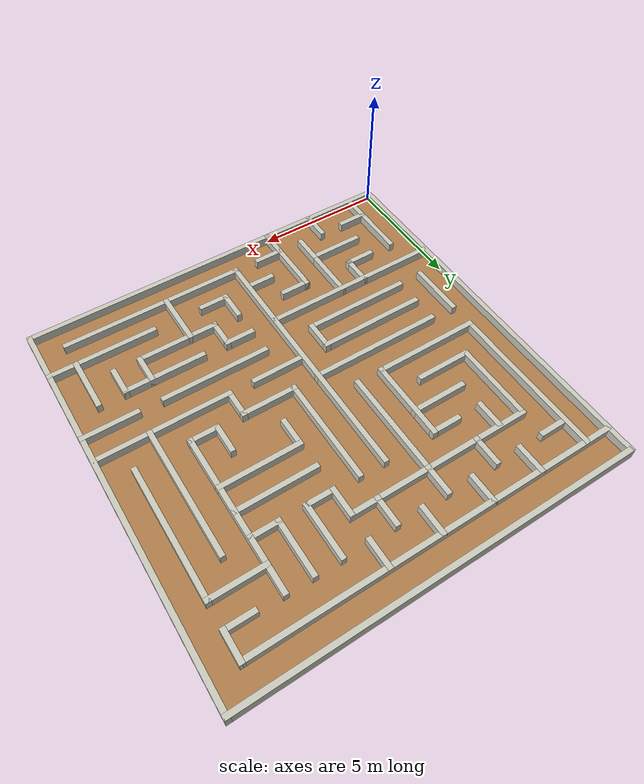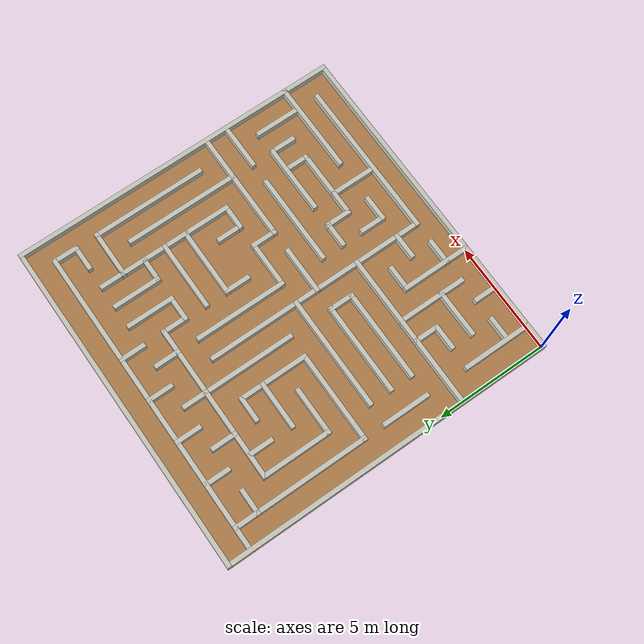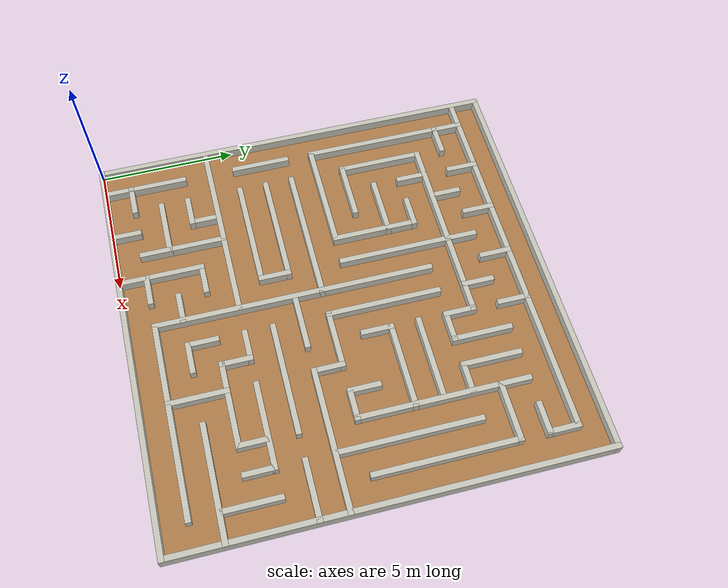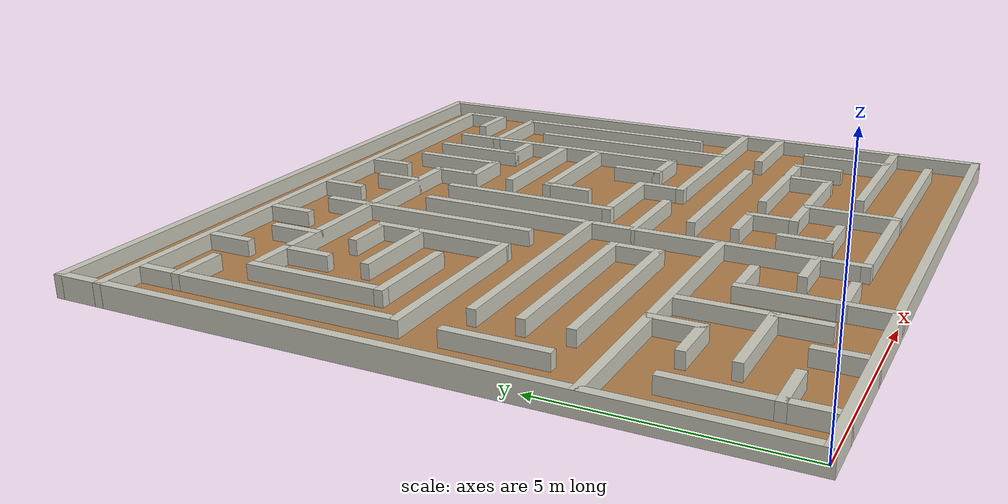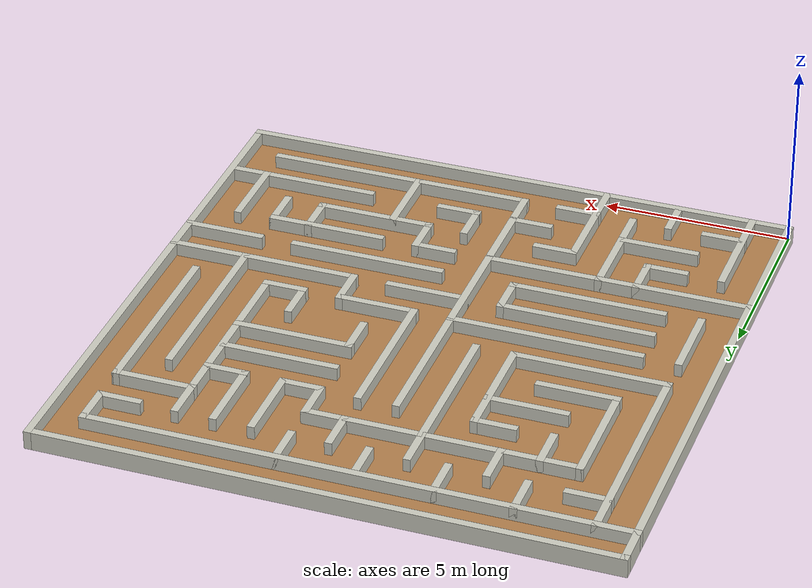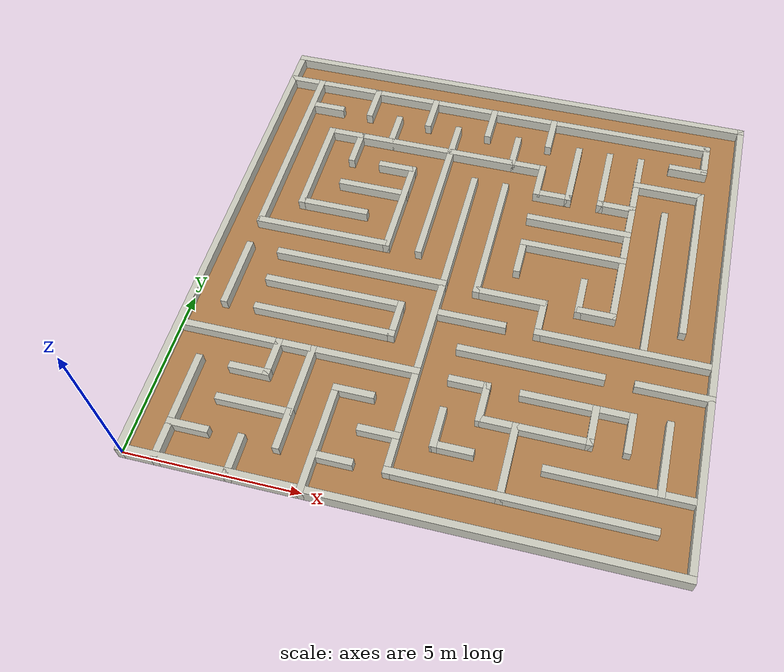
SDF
<?xml version='1.0'?>
<sdf version='1.4'>
    <world name="large_maze">
        <gui>
            <camera name="my_camera">
                <pose>7.5 7.5 30 0 1.57 1.57</pose>
            </camera>
        </gui>

        <scene>
            <shadows>0</shadows>
        </scene>

        <light type="directional" name="luz_Techo">
            <pose>7.5 7.5 9 0 0 0</pose>
            <diffuse>127 127 127 255</diffuse>
            <specular>25 25 25 255</specular>
            <attenuation>
                <range>20</range>
                <linear> 0.5</linear>
                <constant>0.8</constant>
                <quadratic>0.01</quadratic>
            </attenuation>
            <cast_shadows>false</cast_shadows>
        </light>

        <model name='large_maze'>
            <link name="ground">
                <collision name='ground'>
                    <geometry>
                        <box>
                            <size>15 15 0.001</size>
                        </box>
                    </geometry>
                    <pose>0 0 0 0 -0 0</pose>
                </collision>
                <visual name='ground'>
                    <pose>0 0 0 0 -0 0</pose>
                    <geometry>
                        <box>
                            <size>15 15 0.001</size>
                        </box>
                    </geometry>
                    <material>
                        <script>
                            <uri>file://media/materials/scripts/gazebo.material</uri>
                            <name>Gazebo/WoodFloor</name>
                        </script>
                    </material>
                </visual>
                <velocity_decay>
                    <linear>0</linear>
                    <angular>0</angular>
                </velocity_decay>
                <pose>7.5 7.5 0 0 -0 0</pose>
            </link>
            <link name='Wall_0'>
                <collision name='Wall_0_Collision'>
                    <geometry>
                        <box>
                            <size>15.2 0.2 0.5</size>
                        </box>
                    </geometry>
                    <pose>0 0 0.1 0 -0 0</pose>
                </collision>
                <visual name='Wall_0_Visual'>
                    <pose>0 0 0.1 0 -0 0</pose>
                    <geometry>
                        <box>
                            <size>15.2 0.2 0.5</size>
                        </box>
                    </geometry>
                    <material>
                        <script>
                            <uri>file://media/materials/scripts/gazebo.material</uri>
                            <name>Gazebo/PaintedWall</name>
                        </script>
                    </material>
                </visual>
                <velocity_decay>
                    <linear>0</linear>
                    <angular>0</angular>
                </velocity_decay>
                <pose>7.5 0 0 0 -0 0</pose>
            </link>
            <link name='Wall_1'>
                <collision name='Wall_1_Collision'>
                    <geometry>
                        <box>
                            <size>15.2 0.2 0.5</size>
                        </box>
                    </geometry>
                    <pose>0 0 0.1 0 -0 0</pose>
                </collision>
                <visual name='Wall_1_Visual'>
                    <pose>0 0 0.1 0 -0 0</pose>
                    <geometry>
                        <box>
                            <size>15.2 0.2 0.5</size>
                        </box>
                    </geometry>
                    <material>
                        <script>
                            <uri>file://media/materials/scripts/gazebo.material</uri>
                            <name>Gazebo/PaintedWall</name>
                        </script>
                    </material>
                </visual>
                <velocity_decay>
                    <linear>0</linear>
                    <angular>0</angular>
                </velocity_decay>
                <pose>15 7.5 0 0 -0 1.5708</pose>
            </link>
            <link name='Wall_101'>
                <collision name='Wall_101_Collision'>
                    <geometry>
                        <box>
                            <size>2.2 0.2 0.5</size>
                        </box>
                    </geometry>
                    <pose>0 0 0.1 0 -0 0</pose>
                </collision>
                <visual name='Wall_101_Visual'>
                    <pose>0 0 0.1 0 -0 0</pose>
                    <geometry>
                        <box>
                            <size>2.2 0.2 0.5</size>
                        </box>
                    </geometry>
                    <material>
                        <script>
                            <uri>file://media/materials/scripts/gazebo.material</uri>
                            <name>Gazebo/PaintedWall</name>
                        </script>
                    </material>
                </visual>
                <velocity_decay>
                    <linear>0</linear>
                    <angular>0</angular>
                </velocity_decay>
                <pose>8 6 0 0 -0 0</pose>
            </link>
            <link name='Wall_103'>
                <collision name='Wall_103_Collision'>
                    <geometry>
                        <box>
                            <size>5.2 0.2 0.5</size>
                        </box>
                    </geometry>
                    <pose>0 0 0.1 0 -0 0</pose>
                </collision>
                <visual name='Wall_103_Visual'>
                    <pose>0 0 0.1 0 -0 0</pose>
                    <geometry>
                        <box>
                            <size>5.2 0.2 0.5</size>
                        </box>
                    </geometry>
                    <material>
                        <script>
                            <uri>file://media/materials/scripts/gazebo.material</uri>
                            <name>Gazebo/PaintedWall</name>
                        </script>
                    </material>
                </visual>
                <velocity_decay>
                    <linear>0</linear>
                    <angular>0</angular>
                </velocity_decay>
                <pose>12.5 6 0 0 -0 3.14159</pose>
            </link>
            <link name='Wall_104'>
                <collision name='Wall_104_Collision'>
                    <geometry>
                        <box>
                            <size>1.2 0.2 0.5</size>
                        </box>
                    </geometry>
                    <pose>0 0 0.1 0 -0 0</pose>
                </collision>
                <visual name='Wall_104_Visual'>
                    <pose>0 0 0.1 0 -0 0</pose>
                    <geometry>
                        <box>
                            <size>1.2 0.2 0.5</size>
                        </box>
                    </geometry>
                    <material>
                        <script>
                            <uri>file://media/materials/scripts/gazebo.material</uri>
                            <name>Gazebo/PaintedWall</name>
                        </script>
                    </material>
                </visual>
                <velocity_decay>
                    <linear>0</linear>
                    <angular>0</angular>
                </velocity_decay>
                <pose>10 6.5 0 0 -0 1.5708</pose>
            </link>
            <link name='Wall_105'>
                <collision name='Wall_105_Collision'>
                    <geometry>
                        <box>
                            <size>2.2 0.2 0.5</size>
                        </box>
                    </geometry>
                    <pose>0 0 0.1 0 -0 0</pose>
                </collision>
                <visual name='Wall_105_Visual'>
                    <pose>0 0 0.1 0 -0 0</pose>
                    <geometry>
                        <box>
                            <size>2.2 0.2 0.5</size>
                        </box>
                    </geometry>
                    <material>
                        <script>
                            <uri>file://media/materials/scripts/gazebo.material</uri>
                            <name>Gazebo/PaintedWall</name>
                        </script>
                    </material>
                </visual>
                <velocity_decay>
                    <linear>0</linear>
                    <angular>0</angular>
                </velocity_decay>
                <pose>9 7 0 0 -0 3.14159</pose>
            </link>
            <link name='Wall_106'>
                <collision name='Wall_106_Collision'>
                    <geometry>
                        <box>
                            <size>4.2 0.2 0.5</size>
                        </box>
                    </geometry>
                    <pose>0 0 0.1 0 -0 0</pose>
                </collision>
                <visual name='Wall_106_Visual'>
                    <pose>0 0 0.1 0 -0 0</pose>
                    <geometry>
                        <box>
                            <size>4.2 0.2 0.5</size>
                        </box>
                    </geometry>
                    <material>
                        <script>
                            <uri>file://media/materials/scripts/gazebo.material</uri>
                            <name>Gazebo/PaintedWall</name>
                        </script>
                    </material>
                </visual>
                <velocity_decay>
                    <linear>0</linear>
                    <angular>0</angular>
                </velocity_decay>
                <pose>8 9 0 0 -0 1.5708</pose>
            </link>
            <link name='Wall_108'>
                <collision name='Wall_108_Collision'>
                    <geometry>
                        <box>
                            <size>5.2 0.2 0.5</size>
                        </box>
                    </geometry>
                    <pose>0 0 0.1 0 -0 0</pose>
                </collision>
                <visual name='Wall_108_Visual'>
                    <pose>0 0 0.1 0 -0 0</pose>
                    <geometry>
                        <box>
                            <size>5.2 0.2 0.5</size>
                        </box>
                    </geometry>
                    <material>
                        <script>
                            <uri>file://media/materials/scripts/gazebo.material</uri>
                            <name>Gazebo/PaintedWall</name>
                        </script>
                    </material>
                </visual>
                <velocity_decay>
                    <linear>0</linear>
                    <angular>0</angular>
                </velocity_decay>
                <pose>13 8.5 0 0 0 -1.5708</pose>
            </link>
            <link name='Wall_11'>
                <collision name='Wall_11_Collision'>
                    <geometry>
                        <box>
                            <size>7.2 0.2 0.5</size>
                        </box>
                    </geometry>
                    <pose>0 0 0.1 0 -0 0</pose>
                </collision>
                <visual name='Wall_11_Visual'>
                    <pose>0 0 0.1 0 -0 0</pose>
                    <geometry>
                        <box>
                            <size>7.2 0.2 0.5</size>
                        </box>
                    </geometry>
                    <material>
                        <script>
                            <uri>file://media/materials/scripts/gazebo.material</uri>
                            <name>Gazebo/PaintedWall</name>
                        </script>
                    </material>
                </visual>
                <velocity_decay>
                    <linear>0</linear>
                    <angular>0</angular>
                </velocity_decay>
                <pose>3.5 4 0 0 -0 0</pose>
            </link>
            <link name='Wall_110'>
                <collision name='Wall_110_Collision'>
                    <geometry>
                        <box>
                            <size>5.2 0.2 0.5</size>
                        </box>
                    </geometry>
                    <pose>0 0 0.1 0 -0 0</pose>
                </collision>
                <visual name='Wall_110_Visual'>
                    <pose>0 0 0.1 0 -0 0</pose>
                    <geometry>
                        <box>
                            <size>5.2 0.2 0.5</size>
                        </box>
                    </geometry>
                    <material>
                        <script>
                            <uri>file://media/materials/scripts/gazebo.material</uri>
                            <name>Gazebo/PaintedWall</name>
                        </script>
                    </material>
                </visual>
                <velocity_decay>
                    <linear>0</linear>
                    <angular>0</angular>
                </velocity_decay>
                <pose>14 9.5 0 0 -0 1.5708</pose>
            </link>
            <link name='Wall_111'>
                <collision name='Wall_111_Collision'>
                    <geometry>
                        <box>
                            <size>2.2 0.2 0.5</size>
                        </box>
                    </geometry>
                    <pose>0 0 0.1 0 -0 0</pose>
                </collision>
                <visual name='Wall_111_Visual'>
                    <pose>0 0 0.1 0 -0 0</pose>
                    <geometry>
                        <box>
                            <size>2.2 0.2 0.5</size>
                        </box>
                    </geometry>
                    <material>
                        <script>
                            <uri>file://media/materials/scripts/gazebo.material</uri>
                            <name>Gazebo/PaintedWall</name>
                        </script>
                    </material>
                </visual>
                <velocity_decay>
                    <linear>0</linear>
                    <angular>0</angular>
                </velocity_decay>
                <pose>13 12 0 0 -0 3.14159</pose>
            </link>
            <link name='Wall_113'>
                <collision name='Wall_113_Collision'>
                    <geometry>
                        <box>
                            <size>6.2 0.2 0.5</size>
                        </box>
                    </geometry>
                    <pose>0 0 0.1 0 -0 0</pose>
                </collision>
                <visual name='Wall_113_Visual'>
                    <pose>0 0 0.1 0 -0 0</pose>
                    <geometry>
                        <box>
                            <size>6.2 0.2 0.5</size>
                        </box>
                    </geometry>
                    <material>
                        <script>
                            <uri>file://media/materials/scripts/gazebo.material</uri>
                            <name>Gazebo/PaintedWall</name>
                        </script>
                    </material>
                </visual>
                <velocity_decay>
                    <linear>0</linear>
                    <angular>0</angular>
                </velocity_decay>
                <pose>12 10 0 0 0 -1.5708</pose>
            </link>
            <link name='Wall_114'>
                <collision name='Wall_114_Collision'>
                    <geometry>
                        <box>
                            <size>1.2 0.2 0.5</size>
                        </box>
                    </geometry>
                    <pose>0 0 0.1 0 -0 0</pose>
                </collision>
                <visual name='Wall_114_Visual'>
                    <pose>0 0 0.1 0 -0 0</pose>
                    <geometry>
                        <box>
                            <size>1.2 0.2 0.5</size>
                        </box>
                    </geometry>
                    <material>
                        <script>
                            <uri>file://media/materials/scripts/gazebo.material</uri>
                            <name>Gazebo/PaintedWall</name>
                        </script>
                    </material>
                </visual>
                <velocity_decay>
                    <linear>0</linear>
                    <angular>0</angular>
                </velocity_decay>
                <pose>11.5 7 0 0 -0 3.14159</pose>
            </link>
            <link name='Wall_115'>
                <collision name='Wall_115_Collision'>
                    <geometry>
                        <box>
                            <size>1.2 0.2 0.5</size>
                        </box>
                    </geometry>
                    <pose>0 0 0.1 0 -0 0</pose>
                </collision>
                <visual name='Wall_115_Visual'>
                    <pose>0 0 0.1 0 -0 0</pose>
                    <geometry>
                        <box>
                            <size>1.2 0.2 0.5</size>
                        </box>
                    </geometry>
                    <material>
                        <script>
                            <uri>file://media/materials/scripts/gazebo.material</uri>
                            <name>Gazebo/PaintedWall</name>
                        </script>
                    </material>
                </visual>
                <velocity_decay>
                    <linear>0</linear>
                    <angular>0</angular>
                </velocity_decay>
                <pose>11 7.5 0 0 -0 1.5708</pose>
            </link>
            <link name='Wall_117'>
                <collision name='Wall_117_Collision'>
                    <geometry>
                        <box>
                            <size>3.2 0.2 0.5</size>
                        </box>
                    </geometry>
                    <pose>0 0 0.1 0 -0 0</pose>
                </collision>
                <visual name='Wall_117_Visual'>
                    <pose>0 0 0.1 0 -0 0</pose>
                    <geometry>
                        <box>
                            <size>3.2 0.2 0.5</size>
                        </box>
                    </geometry>
                    <material>
                        <script>
                            <uri>file://media/materials/scripts/gazebo.material</uri>
                            <name>Gazebo/PaintedWall</name>
                        </script>
                    </material>
                </visual>
                <velocity_decay>
                    <linear>0</linear>
                    <angular>0</angular>
                </velocity_decay>
                <pose>10.5 9 0 0 -0 3.14159</pose>
            </link>
            <link name='Wall_118'>
                <collision name='Wall_118_Collision'>
                    <geometry>
                        <box>
                            <size>1.2 0.2 0.5</size>
                        </box>
                    </geometry>
                    <pose>0 0 0.1 0 -0 0</pose>
                </collision>
                <visual name='Wall_118_Visual'>
                    <pose>0 0 0.1 0 -0 0</pose>
                    <geometry>
                        <box>
                            <size>1.2 0.2 0.5</size>
                        </box>
                    </geometry>
                    <material>
                        <script>
                            <uri>file://media/materials/scripts/gazebo.material</uri>
                            <name>Gazebo/PaintedWall</name>
                        </script>
                    </material>
                </visual>
                <velocity_decay>
                    <linear>0</linear>
                    <angular>0</angular>
                </velocity_decay>
                <pose>9 8.5 0 0 0 -1.5708</pose>
            </link>
            <link name='Wall_120'>
                <collision name='Wall_120_Collision'>
                    <geometry>
                        <box>
                            <size>3.2 0.2 0.5</size>
                        </box>
                    </geometry>
                    <pose>0 0 0.1 0 -0 0</pose>
                </collision>
                <visual name='Wall_120_Visual'>
                    <pose>0 0 0.1 0 -0 0</pose>
                    <geometry>
                        <box>
                            <size>3.2 0.2 0.5</size>
                        </box>
                    </geometry>
                    <material>
                        <script>
                            <uri>file://media/materials/scripts/gazebo.material</uri>
                            <name>Gazebo/PaintedWall</name>
                        </script>
                    </material>
                </visual>
                <velocity_decay>
                    <linear>0</linear>
                    <angular>0</angular>
                </velocity_decay>
                <pose>10.5 10 0 0 -0 3.14159</pose>
            </link>
            <link name='Wall_122'>
                <collision name='Wall_122_Collision'>
                    <geometry>
                        <box>
                            <size>2.2 0.2 0.5</size>
                        </box>
                    </geometry>
                    <pose>0 0 0.1 0 -0 0</pose>
                </collision>
                <visual name='Wall_122_Visual'>
                    <pose>0 0 0.1 0 -0 0</pose>
                    <geometry>
                        <box>
                            <size>2.2 0.2 0.5</size>
                        </box>
                    </geometry>
                    <material>
                        <script>
                            <uri>file://media/materials/scripts/gazebo.material</uri>
                            <name>Gazebo/PaintedWall</name>
                        </script>
                    </material>
                </visual>
                <velocity_decay>
                    <linear>0</linear>
                    <angular>0</angular>
                </velocity_decay>
                <pose>11 12 0 0 0 -1.5708</pose>
            </link>
            <link name='Wall_123'>
                <collision name='Wall_123_Collision'>
                    <geometry>
                        <box>
                            <size>1.2 0.2 0.5</size>
                        </box>
                    </geometry>
                    <pose>0 0 0.1 0 -0 0</pose>
                </collision>
                <visual name='Wall_123_Visual'>
                    <pose>0 0 0.1 0 -0 0</pose>
                    <geometry>
                        <box>
                            <size>1.2 0.2 0.5</size>
                        </box>
                    </geometry>
                    <material>
                        <script>
                            <uri>file://media/materials/scripts/gazebo.material</uri>
                            <name>Gazebo/PaintedWall</name>
                        </script>
                    </material>
                </visual>
                <velocity_decay>
                    <linear>0</linear>
                    <angular>0</angular>
                </velocity_decay>
                <pose>11.5 11 0 0 -0 0</pose>
            </link>
            <link name='Wall_13'>
                <collision name='Wall_13_Collision'>
                    <geometry>
                        <box>
                            <size>1.2 0.2 0.5</size>
                        </box>
                    </geometry>
                    <pose>0 0 0.1 0 -0 0</pose>
                </collision>
                <visual name='Wall_13_Visual'>
                    <pose>0 0 0.1 0 -0 0</pose>
                    <geometry>
                        <box>
                            <size>1.2 0.2 0.5</size>
                        </box>
                    </geometry>
                    <material>
                        <script>
                            <uri>file://media/materials/scripts/gazebo.material</uri>
                            <name>Gazebo/PaintedWall</name>
                        </script>
                    </material>
                </visual>
                <velocity_decay>
                    <linear>0</linear>
                    <angular>0</angular>
                </velocity_decay>
                <pose>3 3.5 0 0 0 -1.5708</pose>
            </link>
            <link name='Wall_14'>
                <collision name='Wall_14_Collision'>
                    <geometry>
                        <box>
                            <size>1.2 0.2 0.5</size>
                        </box>
                    </geometry>
                    <pose>0 0 0.1 0 -0 0</pose>
                </collision>
                <visual name='Wall_14_Visual'>
                    <pose>0 0 0.1 0 -0 0</pose>
                    <geometry>
                        <box>
                            <size>1.2 0.2 0.5</size>
                        </box>
                    </geometry>
                    <material>
                        <script>
                            <uri>file://media/materials/scripts/gazebo.material</uri>
                            <name>Gazebo/PaintedWall</name>
                        </script>
                    </material>
                </visual>
                <velocity_decay>
                    <linear>0</linear>
                    <angular>0</angular>
                </velocity_decay>
                <pose>2.5 3 0 0 -0 3.14159</pose>
            </link>
            <link name='Wall_16'>
                <collision name='Wall_16_Collision'>
                    <geometry>
                        <box>
                            <size>2.2 0.2 0.5</size>
                        </box>
                    </geometry>
                    <pose>0 0 0.1 0 -0 0</pose>
                </collision>
                <visual name='Wall_16_Visual'>
                    <pose>0 0 0.1 0 -0 0</pose>
                    <geometry>
                        <box>
                            <size>2.2 0.2 0.5</size>
                        </box>
                    </geometry>
                    <material>
                        <script>
                            <uri>file://media/materials/scripts/gazebo.material</uri>
                            <name>Gazebo/PaintedWall</name>
                        </script>
                    </material>
                </visual>
                <velocity_decay>
                    <linear>0</linear>
                    <angular>0</angular>
                </velocity_decay>
                <pose>4 3 0 0 0 -1.5708</pose>
            </link>
            <link name='Wall_17'>
                <collision name='Wall_17_Collision'>
                    <geometry>
                        <box>
                            <size>2.2 0.2 0.5</size>
                        </box>
                    </geometry>
                    <pose>0 0 0.1 0 -0 0</pose>
                </collision>
                <visual name='Wall_17_Visual'>
                    <pose>0 0 0.1 0 -0 0</pose>
                    <geometry>
                        <box>
                            <size>2.2 0.2 0.5</size>
                        </box>
                    </geometry>
                    <material>
                        <script>
                            <uri>file://media/materials/scripts/gazebo.material</uri>
                            <name>Gazebo/PaintedWall</name>
                        </script>
                    </material>
                </visual>
                <velocity_decay>
                    <linear>0</linear>
                    <angular>0</angular>
                </velocity_decay>
                <pose>3 2 0 0 -0 3.14159</pose>
            </link>
            <link name='Wall_19'>
                <collision name='Wall_19_Collision'>
                    <geometry>
                        <box>
                            <size>1.2 0.2 0.5</size>
                        </box>
                    </geometry>
                    <pose>0 0 0.1 0 -0 0</pose>
                </collision>
                <visual name='Wall_19_Visual'>
                    <pose>0 0 0.1 0 -0 0</pose>
                    <geometry>
                        <box>
                            <size>1.2 0.2 0.5</size>
                        </box>
                    </geometry>
                    <material>
                        <script>
                            <uri>file://media/materials/scripts/gazebo.material</uri>
                            <name>Gazebo/PaintedWall</name>
                        </script>
                    </material>
                </visual>
                <velocity_decay>
                    <linear>0</linear>
                    <angular>0</angular>
                </velocity_decay>
                <pose>4 1.5 0 0 0 -1.5708</pose>
            </link>
            <link name='Wall_2'>
                <collision name='Wall_2_Collision'>
                    <geometry>
                        <box>
                            <size>15.2 0.2 0.5</size>
                        </box>
                    </geometry>
                    <pose>0 0 0.1 0 -0 0</pose>
                </collision>
                <visual name='Wall_2_Visual'>
                    <pose>0 0 0.1 0 -0 0</pose>
                    <geometry>
                        <box>
                            <size>15.2 0.2 0.5</size>
                        </box>
                    </geometry>
                    <material>
                        <script>
                            <uri>file://media/materials/scripts/gazebo.material</uri>
                            <name>Gazebo/PaintedWall</name>
                        </script>
                    </material>
                </visual>
                <velocity_decay>
                    <linear>0</linear>
                    <angular>0</angular>
                </velocity_decay>
                <pose>7.5 15 0 0 -0 3.14159</pose>
            </link>
            <link name='Wall_21'>
                <collision name='Wall_21_Collision'>
                    <geometry>
                        <box>
                            <size>3.2 0.2 0.5</size>
                        </box>
                    </geometry>
                    <pose>0 0 0.1 0 -0 0</pose>
                </collision>
                <visual name='Wall_21_Visual'>
                    <pose>0 0 0.1 0 -0 0</pose>
                    <geometry>
                        <box>
                            <size>3.2 0.2 0.5</size>
                        </box>
                    </geometry>
                    <material>
                        <script>
                            <uri>file://media/materials/scripts/gazebo.material</uri>
                            <name>Gazebo/PaintedWall</name>
                        </script>
                    </material>
                </visual>
                <velocity_decay>
                    <linear>0</linear>
                    <angular>0</angular>
                </velocity_decay>
                <pose>5 1.5 0 0 -0 1.5708</pose>
            </link>
            <link name='Wall_22'>
                <collision name='Wall_22_Collision'>
                    <geometry>
                        <box>
                            <size>1.2 0.2 0.5</size>
                        </box>
                    </geometry>
                    <pose>0 0 0.1 0 -0 0</pose>
                </collision>
                <visual name='Wall_22_Visual'>
                    <pose>0 0 0.1 0 -0 0</pose>
                    <geometry>
                        <box>
                            <size>1.2 0.2 0.5</size>
                        </box>
                    </geometry>
                    <material>
                        <script>
                            <uri>file://media/materials/scripts/gazebo.material</uri>
                            <name>Gazebo/PaintedWall</name>
                        </script>
                    </material>
                </visual>
                <velocity_decay>
                    <linear>0</linear>
                    <angular>0</angular>
                </velocity_decay>
                <pose>5.5 3 0 0 -0 0</pose>
            </link>
            <link name='Wall_24'>
                <collision name='Wall_24_Collision'>
                    <geometry>
                        <box>
                            <size>1.2 0.2 0.5</size>
                        </box>
                    </geometry>
                    <pose>0 0 0.1 0 -0 0</pose>
                </collision>
                <visual name='Wall_24_Visual'>
                    <pose>0 0 0.1 0 -0 0</pose>
                    <geometry>
                        <box>
                            <size>1.2 0.2 0.5</size>
                        </box>
                    </geometry>
                    <material>
                        <script>
                            <uri>file://media/materials/scripts/gazebo.material</uri>
                            <name>Gazebo/PaintedWall</name>
                        </script>
                    </material>
                </visual>
                <velocity_decay>
                    <linear>0</linear>
                    <angular>0</angular>
                </velocity_decay>
                <pose>5.5 1 0 0 -0 0</pose>
            </link>
            <link name='Wall_26'>
                <collision name='Wall_26_Collision'>
                    <geometry>
                        <box>
                            <size>7.2 0.2 0.5</size>
                        </box>
                    </geometry>
                    <pose>0 0 0.1 0 -0 0</pose>
                </collision>
                <visual name='Wall_26_Visual'>
                    <pose>0 0 0.1 0 -0 0</pose>
                    <geometry>
                        <box>
                            <size>7.2 0.2 0.5</size>
                        </box>
                    </geometry>
                    <material>
                        <script>
                            <uri>file://media/materials/scripts/gazebo.material</uri>
                            <name>Gazebo/PaintedWall</name>
                        </script>
                    </material>
                </visual>
                <velocity_decay>
                    <linear>0</linear>
                    <angular>0</angular>
                </velocity_decay>
                <pose>10.5 1 0 0 -0 3.14159</pose>
            </link>
            <link name='Wall_27'>
                <collision name='Wall_27_Collision'>
                    <geometry>
                        <box>
                            <size>10.2 0.2 0.5</size>
                        </box>
                    </geometry>
                    <pose>0 0 0.1 0 -0 0</pose>
                </collision>
                <visual name='Wall_27_Visual'>
                    <pose>0 0 0.1 0 -0 0</pose>
                    <geometry>
                        <box>
                            <size>10.2 0.2 0.5</size>
                        </box>
                    </geometry>
                    <material>
                        <script>
                            <uri>file://media/materials/scripts/gazebo.material</uri>
                            <name>Gazebo/PaintedWall</name>
                        </script>
                    </material>
                </visual>
                <velocity_decay>
                    <linear>0</linear>
                    <angular>0</angular>
                </velocity_decay>
                <pose>7 6 0 0 -0 1.5708</pose>
            </link>
            <link name='Wall_29'>
                <collision name='Wall_29_Collision'>
                    <geometry>
                        <box>
                            <size>1.2 0.2 0.5</size>
                        </box>
                    </geometry>
                    <pose>0 0 0.1 0 -0 0</pose>
                </collision>
                <visual name='Wall_29_Visual'>
                    <pose>0 0 0.1 0 -0 0</pose>
                    <geometry>
                        <box>
                            <size>1.2 0.2 0.5</size>
                        </box>
                    </geometry>
                    <material>
                        <script>
                            <uri>file://media/materials/scripts/gazebo.material</uri>
                            <name>Gazebo/PaintedWall</name>
                        </script>
                    </material>
                </visual>
                <velocity_decay>
                    <linear>0</linear>
                    <angular>0</angular>
                </velocity_decay>
                <pose>6.5 2 0 0 -0 0</pose>
            </link>
            <link name='Wall_3'>
                <collision name='Wall_3_Collision'>
                    <geometry>
                        <box>
                            <size>15.2 0.2 0.5</size>
                        </box>
                    </geometry>
                    <pose>0 0 0.1 0 -0 0</pose>
                </collision>
                <visual name='Wall_3_Visual'>
                    <pose>0 0 0.1 0 -0 0</pose>
                    <geometry>
                        <box>
                            <size>15.2 0.2 0.5</size>
                        </box>
                    </geometry>
                    <material>
                        <script>
                            <uri>file://media/materials/scripts/gazebo.material</uri>
                            <name>Gazebo/PaintedWall</name>
                        </script>
                    </material>
                </visual>
                <velocity_decay>
                    <linear>0</linear>
                    <angular>0</angular>
                </velocity_decay>
                <pose>0 7.5 0 0 0 -1.5708</pose>
            </link>
            <link name='Wall_31'>
                <collision name='Wall_31_Collision'>
                    <geometry>
                        <box>
                            <size>1.2 0.2 0.5</size>
                        </box>
                    </geometry>
                    <pose>0 0 0.1 0 -0 0</pose>
                </collision>
                <visual name='Wall_31_Visual'>
                    <pose>0 0 0.1 0 -0 0</pose>
                    <geometry>
                        <box>
                            <size>1.2 0.2 0.5</size>
                        </box>
                    </geometry>
                    <material>
                        <script>
                            <uri>file://media/materials/scripts/gazebo.material</uri>
                            <name>Gazebo/PaintedWall</name>
                        </script>
                    </material>
                </visual>
                <velocity_decay>
                    <linear>0</linear>
                    <angular>0</angular>
                </velocity_decay>
                <pose>8 2.5 0 0 0 -1.5708</pose>
            </link>
            <link name='Wall_32'>
                <collision name='Wall_32_Collision'>
                    <geometry>
                        <box>
                            <size>1.2 0.2 0.5</size>
                        </box>
                    </geometry>
                    <pose>0 0 0.1 0 -0 0</pose>
                </collision>
                <visual name='Wall_32_Visual'>
                    <pose>0 0 0.1 0 -0 0</pose>
                    <geometry>
                        <box>
                            <size>1.2 0.2 0.5</size>
                        </box>
                    </geometry>
                    <material>
                        <script>
                            <uri>file://media/materials/scripts/gazebo.material</uri>
                            <name>Gazebo/PaintedWall</name>
                        </script>
                    </material>
                </visual>
                <velocity_decay>
                    <linear>0</linear>
                    <angular>0</angular>
                </velocity_decay>
                <pose>8.5 2 0 0 -0 0</pose>
            </link>
            <link name='Wall_34'>
                <collision name='Wall_34_Collision'>
                    <geometry>
                        <box>
                            <size>4.2 0.2 0.5</size>
                        </box>
                    </geometry>
                    <pose>0 0 0.1 0 -0 0</pose>
                </collision>
                <visual name='Wall_34_Visual'>
                    <pose>0 0 0.1 0 -0 0</pose>
                    <geometry>
                        <box>
                            <size>4.2 0.2 0.5</size>
                        </box>
                    </geometry>
                    <material>
                        <script>
                            <uri>file://media/materials/scripts/gazebo.material</uri>
                            <name>Gazebo/PaintedWall</name>
                        </script>
                    </material>
                </visual>
                <velocity_decay>
                    <linear>0</linear>
                    <angular>0</angular>
                </velocity_decay>
                <pose>13 2 0 0 -0 3.14159</pose>
            </link>
            <link name='Wall_36'>
                <collision name='Wall_36_Collision'>
                    <geometry>
                        <box>
                            <size>2.2 0.2 0.5</size>
                        </box>
                    </geometry>
                    <pose>0 0 0.1 0 -0 0</pose>
                </collision>
                <visual name='Wall_36_Visual'>
                    <pose>0 0 0.1 0 -0 0</pose>
                    <geometry>
                        <box>
                            <size>2.2 0.2 0.5</size>
                        </box>
                    </geometry>
                    <material>
                        <script>
                            <uri>file://media/materials/scripts/gazebo.material</uri>
                            <name>Gazebo/PaintedWall</name>
                        </script>
                    </material>
                </visual>
                <velocity_decay>
                    <linear>0</linear>
                    <angular>0</angular>
                </velocity_decay>
                <pose>10 2 0 0 -0 1.5708</pose>
            </link>
            <link name='Wall_38'>
                <collision name='Wall_38_Collision'>
                    <geometry>
                        <box>
                            <size>2.2 0.2 0.5</size>
                        </box>
                    </geometry>
                    <pose>0 0 0.1 0 -0 0</pose>
                </collision>
                <visual name='Wall_38_Visual'>
                    <pose>0 0 0.1 0 -0 0</pose>
                    <geometry>
                        <box>
                            <size>2.2 0.2 0.5</size>
                        </box>
                    </geometry>
                    <material>
                        <script>
                            <uri>file://media/materials/scripts/gazebo.material</uri>
                            <name>Gazebo/PaintedWall</name>
                        </script>
                    </material>
                </visual>
                <velocity_decay>
                    <linear>0</linear>
                    <angular>0</angular>
                </velocity_decay>
                <pose>14 3 0 0 -0 1.5708</pose>
            </link>
            <link name='Wall_40'>
                <collision name='Wall_40_Collision'>
                    <geometry>
                        <box>
                            <size>3.2 0.2 0.5</size>
                        </box>
                    </geometry>
                    <pose>0 0 0.1 0 -0 0</pose>
                </collision>
                <visual name='Wall_40_Visual'>
                    <pose>0 0 0.1 0 -0 0</pose>
                    <geometry>
                        <box>
                            <size>3.2 0.2 0.5</size>
                        </box>
                    </geometry>
                    <material>
                        <script>
                            <uri>file://media/materials/scripts/gazebo.material</uri>
                            <name>Gazebo/PaintedWall</name>
                        </script>
                    </material>
                </visual>
                <velocity_decay>
                    <linear>0</linear>
                    <angular>0</angular>
                </velocity_decay>
                <pose>10.5 3 0 0 -0 0</pose>
            </link>
            <link name='Wall_42'>
                <collision name='Wall_42_Collision'>
                    <geometry>
                        <box>
                            <size>1.2 0.2 0.5</size>
                        </box>
                    </geometry>
                    <pose>0 0 0.1 0 -0 0</pose>
                </collision>
                <visual name='Wall_42_Visual'>
                    <pose>0 0 0.1 0 -0 0</pose>
                    <geometry>
                        <box>
                            <size>1.2 0.2 0.5</size>
                        </box>
                    </geometry>
                    <material>
                        <script>
                            <uri>file://media/materials/scripts/gazebo.material</uri>
                            <name>Gazebo/PaintedWall</name>
                        </script>
                    </material>
                </visual>
                <velocity_decay>
                    <linear>0</linear>
                    <angular>0</angular>
                </velocity_decay>
                <pose>9 3.5 0 0 -0 1.5708</pose>
            </link>
            <link name='Wall_43'>
                <collision name='Wall_43_Collision'>
                    <geometry>
                        <box>
                            <size>1.2 0.2 0.5</size>
                        </box>
                    </geometry>
                    <pose>0 0 0.1 0 -0 0</pose>
                </collision>
                <visual name='Wall_43_Visual'>
                    <pose>0 0 0.1 0 -0 0</pose>
                    <geometry>
                        <box>
                            <size>1.2 0.2 0.5</size>
                        </box>
                    </geometry>
                    <material>
                        <script>
                            <uri>file://media/materials/scripts/gazebo.material</uri>
                            <name>Gazebo/PaintedWall</name>
                        </script>
                    </material>
                </visual>
                <velocity_decay>
                    <linear>0</linear>
                    <angular>0</angular>
                </velocity_decay>
                <pose>8.5 4 0 0 -0 3.14159</pose>
            </link>
            <link name='Wall_46'>
                <collision name='Wall_46_Collision'>
                    <geometry>
                        <box>
                            <size>1.2 0.2 0.5</size>
                        </box>
                    </geometry>
                    <pose>0 0 0.1 0 -0 0</pose>
                </collision>
                <visual name='Wall_46_Visual'>
                    <pose>0 0 0.1 0 -0 0</pose>
                    <geometry>
                        <box>
                            <size>1.2 0.2 0.5</size>
                        </box>
                    </geometry>
                    <material>
                        <script>
                            <uri>file://media/materials/scripts/gazebo.material</uri>
                            <name>Gazebo/PaintedWall</name>
                        </script>
                    </material>
                </visual>
                <velocity_decay>
                    <linear>0</linear>
                    <angular>0</angular>
                </velocity_decay>
                <pose>12 3.5 0 0 -0 1.5708</pose>
            </link>
            <link name='Wall_48'>
                <collision name='Wall_48_Collision'>
                    <geometry>
                        <box>
                            <size>3.2 0.2 0.5</size>
                        </box>
                    </geometry>
                    <pose>0 0 0.1 0 -0 0</pose>
                </collision>
                <visual name='Wall_48_Visual'>
                    <pose>0 0 0.1 0 -0 0</pose>
                    <geometry>
                        <box>
                            <size>3.2 0.2 0.5</size>
                        </box>
                    </geometry>
                    <material>
                        <script>
                            <uri>file://media/materials/scripts/gazebo.material</uri>
                            <name>Gazebo/PaintedWall</name>
                        </script>
                    </material>
                </visual>
                <velocity_decay>
                    <linear>0</linear>
                    <angular>0</angular>
                </velocity_decay>
                <pose>11.5 4 0 0 -0 0</pose>
            </link>
            <link name='Wall_49'>
                <collision name='Wall_49_Collision'>
                    <geometry>
                        <box>
                            <size>1.2 0.2 0.5</size>
                        </box>
                    </geometry>
                    <pose>0 0 0.1 0 -0 0</pose>
                </collision>
                <visual name='Wall_49_Visual'>
                    <pose>0 0 0.1 0 -0 0</pose>
                    <geometry>
                        <box>
                            <size>1.2 0.2 0.5</size>
                        </box>
                    </geometry>
                    <material>
                        <script>
                            <uri>file://media/materials/scripts/gazebo.material</uri>
                            <name>Gazebo/PaintedWall</name>
                        </script>
                    </material>
                </visual>
                <velocity_decay>
                    <linear>0</linear>
                    <angular>0</angular>
                </velocity_decay>
                <pose>13 3.5 0 0 0 -1.5708</pose>
            </link>
            <link name='Wall_5'>
                <collision name='Wall_5_Collision'>
                    <geometry>
                        <box>
                            <size>3.2 0.2 0.5</size>
                        </box>
                    </geometry>
                    <pose>0 0 0.1 0 -0 0</pose>
                </collision>
                <visual name='Wall_5_Visual'>
                    <pose>0 0 0.1 0 -0 0</pose>
                    <geometry>
                        <box>
                            <size>3.2 0.2 0.5</size>
                        </box>
                    </geometry>
                    <material>
                        <script>
                            <uri>file://media/materials/scripts/gazebo.material</uri>
                            <name>Gazebo/PaintedWall</name>
                        </script>
                    </material>
                </visual>
                <velocity_decay>
                    <linear>0</linear>
                    <angular>0</angular>
                </velocity_decay>
                <pose>1 1.5 0 0 -0 1.5708</pose>
            </link>
            <link name='Wall_51'>
                <collision name='Wall_51_Collision'>
                    <geometry>
                        <box>
                            <size>2.2 0.2 0.5</size>
                        </box>
                    </geometry>
                    <pose>0 0 0.1 0 -0 0</pose>
                </collision>
                <visual name='Wall_51_Visual'>
                    <pose>0 0 0.1 0 -0 0</pose>
                    <geometry>
                        <box>
                            <size>2.2 0.2 0.5</size>
                        </box>
                    </geometry>
                    <material>
                        <script>
                            <uri>file://media/materials/scripts/gazebo.material</uri>
                            <name>Gazebo/PaintedWall</name>
                        </script>
                    </material>
                </visual>
                <velocity_decay>
                    <linear>0</linear>
                    <angular>0</angular>
                </velocity_decay>
                <pose>1 6 0 0 -0 1.5708</pose>
            </link>
            <link name='Wall_53'>
                <collision name='Wall_53_Collision'>
                    <geometry>
                        <box>
                            <size>4.2 0.2 0.5</size>
                        </box>
                    </geometry>
                    <pose>0 0 0.1 0 -0 0</pose>
                </collision>
                <visual name='Wall_53_Visual'>
                    <pose>0 0 0.1 0 -0 0</pose>
                    <geometry>
                        <box>
                            <size>4.2 0.2 0.5</size>
                        </box>
                    </geometry>
                    <material>
                        <script>
                            <uri>file://media/materials/scripts/gazebo.material</uri>
                            <name>Gazebo/PaintedWall</name>
                        </script>
                    </material>
                </visual>
                <velocity_decay>
                    <linear>0</linear>
                    <angular>0</angular>
                </velocity_decay>
                <pose>4 5 0 0 -0 0</pose>
            </link>
            <link name='Wall_54'>
                <collision name='Wall_54_Collision'>
                    <geometry>
                        <box>
                            <size>1.2 0.2 0.5</size>
                        </box>
                    </geometry>
                    <pose>0 0 0.1 0 -0 0</pose>
                </collision>
                <visual name='Wall_54_Visual'>
                    <pose>0 0 0.1 0 -0 0</pose>
                    <geometry>
                        <box>
                            <size>1.2 0.2 0.5</size>
                        </box>
                    </geometry>
                    <material>
                        <script>
                            <uri>file://media/materials/scripts/gazebo.material</uri>
                            <name>Gazebo/PaintedWall</name>
                        </script>
                    </material>
                </visual>
                <velocity_decay>
                    <linear>0</linear>
                    <angular>0</angular>
                </velocity_decay>
                <pose>6 5.5 0 0 -0 1.5708</pose>
            </link>
            <link name='Wall_55'>
                <collision name='Wall_55_Collision'>
                    <geometry>
                        <box>
                            <size>4.2 0.2 0.5</size>
                        </box>
                    </geometry>
                    <pose>0 0 0.1 0 -0 0</pose>
                </collision>
                <visual name='Wall_55_Visual'>
                    <pose>0 0 0.1 0 -0 0</pose>
                    <geometry>
                        <box>
                            <size>4.2 0.2 0.5</size>
                        </box>
                    </geometry>
                    <material>
                        <script>
                            <uri>file://media/materials/scripts/gazebo.material</uri>
                            <name>Gazebo/PaintedWall</name>
                        </script>
                    </material>
                </visual>
                <velocity_decay>
                    <linear>0</linear>
                    <angular>0</angular>
                </velocity_decay>
                <pose>4 6 0 0 -0 3.14159</pose>
            </link>
            <link name='Wall_57'>
                <collision name='Wall_57_Collision'>
                    <geometry>
                        <box>
                            <size>5.2 0.2 0.5</size>
                        </box>
                    </geometry>
                    <pose>0 0 0.1 0 -0 0</pose>
                </collision>
                <visual name='Wall_57_Visual'>
                    <pose>0 0 0.1 0 -0 0</pose>
                    <geometry>
                        <box>
                            <size>5.2 0.2 0.5</size>
                        </box>
                    </geometry>
                    <material>
                        <script>
                            <uri>file://media/materials/scripts/gazebo.material</uri>
                            <name>Gazebo/PaintedWall</name>
                        </script>
                    </material>
                </visual>
                <velocity_decay>
                    <linear>0</linear>
                    <angular>0</angular>
                </velocity_decay>
                <pose>4.5 7 0 0 -0 3.14159</pose>
            </link>
            <link name='Wall_59'>
                <collision name='Wall_59_Collision'>
                    <geometry>
                        <box>
                            <size>14.2 0.2 0.5</size>
                        </box>
                    </geometry>
                    <pose>0 0 0.1 0 -0 0</pose>
                </collision>
                <visual name='Wall_59_Visual'>
                    <pose>0 0 0.1 0 -0 0</pose>
                    <geometry>
                        <box>
                            <size>14.2 0.2 0.5</size>
                        </box>
                    </geometry>
                    <material>
                        <script>
                            <uri>file://media/materials/scripts/gazebo.material</uri>
                            <name>Gazebo/PaintedWall</name>
                        </script>
                    </material>
                </visual>
                <velocity_decay>
                    <linear>0</linear>
                    <angular>0</angular>
                </velocity_decay>
                <pose>7 14 0 0 -0 0</pose>
            </link>
            <link name='Wall_60'>
                <collision name='Wall_60_Collision'>
                    <geometry>
                        <box>
                            <size>1.2 0.2 0.5</size>
                        </box>
                    </geometry>
                    <pose>0 0 0.1 0 -0 0</pose>
                </collision>
                <visual name='Wall_60_Visual'>
                    <pose>0 0 0.1 0 -0 0</pose>
                    <geometry>
                        <box>
                            <size>1.2 0.2 0.5</size>
                        </box>
                    </geometry>
                    <material>
                        <script>
                            <uri>file://media/materials/scripts/gazebo.material</uri>
                            <name>Gazebo/PaintedWall</name>
                        </script>
                    </material>
                </visual>
                <velocity_decay>
                    <linear>0</linear>
                    <angular>0</angular>
                </velocity_decay>
                <pose>14 13.5 0 0 0 -1.5708</pose>
            </link>
            <link name='Wall_61'>
                <collision name='Wall_61_Collision'>
                    <geometry>
                        <box>
                            <size>1.2 0.2 0.5</size>
                        </box>
                    </geometry>
                    <pose>0 0 0.1 0 -0 0</pose>
                </collision>
                <visual name='Wall_61_Visual'>
                    <pose>0 0 0.1 0 -0 0</pose>
                    <geometry>
                        <box>
                            <size>1.2 0.2 0.5</size>
                        </box>
                    </geometry>
                    <material>
                        <script>
                            <uri>file://media/materials/scripts/gazebo.material</uri>
                            <name>Gazebo/PaintedWall</name>
                        </script>
                    </material>
                </visual>
                <velocity_decay>
                    <linear>0</linear>
                    <angular>0</angular>
                </velocity_decay>
                <pose>13.5 13 0 0 -0 3.14159</pose>
            </link>
            <link name='Wall_63'>
                <collision name='Wall_63_Collision'>
                    <geometry>
                        <box>
                            <size>6.2 0.2 0.5</size>
                        </box>
                    </geometry>
                    <pose>0 0 0.1 0 -0 0</pose>
                </collision>
                <visual name='Wall_63_Visual'>
                    <pose>0 0 0.1 0 -0 0</pose>
                    <geometry>
                        <box>
                            <size>6.2 0.2 0.5</size>
                        </box>
                    </geometry>
                    <material>
                        <script>
                            <uri>file://media/materials/scripts/gazebo.material</uri>
                            <name>Gazebo/PaintedWall</name>
                        </script>
                    </material>
                </visual>
                <velocity_decay>
                    <linear>0</linear>
                    <angular>0</angular>
                </velocity_decay>
                <pose>1 11 0 0 0 -1.5708</pose>
            </link>
            <link name='Wall_64'>
                <collision name='Wall_64_Collision'>
                    <geometry>
                        <box>
                            <size>4.2 0.2 0.5</size>
                        </box>
                    </geometry>
                    <pose>0 0 0.1 0 -0 0</pose>
                </collision>
                <visual name='Wall_64_Visual'>
                    <pose>0 0 0.1 0 -0 0</pose>
                    <geometry>
                        <box>
                            <size>4.2 0.2 0.5</size>
                        </box>
                    </geometry>
                    <material>
                        <script>
                            <uri>file://media/materials/scripts/gazebo.material</uri>
                            <name>Gazebo/PaintedWall</name>
                        </script>
                    </material>
                </visual>
                <velocity_decay>
                    <linear>0</linear>
                    <angular>0</angular>
                </velocity_decay>
                <pose>3 8 0 0 -0 0</pose>
            </link>
            <link name='Wall_65'>
                <collision name='Wall_65_Collision'>
                    <geometry>
                        <box>
                            <size>3.2 0.2 0.5</size>
                        </box>
                    </geometry>
                    <pose>0 0 0.1 0 -0 0</pose>
                </collision>
                <visual name='Wall_65_Visual'>
                    <pose>0 0 0.1 0 -0 0</pose>
                    <geometry>
                        <box>
                            <size>3.2 0.2 0.5</size>
                        </box>
                    </geometry>
                    <material>
                        <script>
                            <uri>file://media/materials/scripts/gazebo.material</uri>
                            <name>Gazebo/PaintedWall</name>
                        </script>
                    </material>
                </visual>
                <velocity_decay>
                    <linear>0</linear>
                    <angular>0</angular>
                </velocity_decay>
                <pose>5 9.5 0 0 -0 1.5708</pose>
            </link>
            <link name='Wall_66'>
                <collision name='Wall_66_Collision'>
                    <geometry>
                        <box>
                            <size>1.2 0.2 0.5</size>
                        </box>
                    </geometry>
                    <pose>0 0 0.1 0 -0 0</pose>
                </collision>
                <visual name='Wall_66_Visual'>
                    <pose>0 0 0.1 0 -0 0</pose>
                    <geometry>
                        <box>
                            <size>1.2 0.2 0.5</size>
                        </box>
                    </geometry>
                    <material>
                        <script>
                            <uri>file://media/materials/scripts/gazebo.material</uri>
                            <name>Gazebo/PaintedWall</name>
                        </script>
                    </material>
                </visual>
                <velocity_decay>
                    <linear>0</linear>
                    <angular>0</angular>
                </velocity_decay>
                <pose>4.5 11 0 0 -0 3.14159</pose>
            </link>
            <link name='Wall_68'>
                <collision name='Wall_68_Collision'>
                    <geometry>
                        <box>
                            <size>2.2 0.2 0.5</size>
                        </box>
                    </geometry>
                    <pose>0 0 0.1 0 -0 0</pose>
                </collision>
                <visual name='Wall_68_Visual'>
                    <pose>0 0 0.1 0 -0 0</pose>
                    <geometry>
                        <box>
                            <size>2.2 0.2 0.5</size>
                        </box>
                    </geometry>
                    <material>
                        <script>
                            <uri>file://media/materials/scripts/gazebo.material</uri>
                            <name>Gazebo/PaintedWall</name>
                        </script>
                    </material>
                </visual>
                <velocity_decay>
                    <linear>0</linear>
                    <angular>0</angular>
                </velocity_decay>
                <pose>4 10 0 0 -0 3.14159</pose>
            </link>
            <link name='Wall_7'>
                <collision name='Wall_7_Collision'>
                    <geometry>
                        <box>
                            <size>1.2 0.2 0.5</size>
                        </box>
                    </geometry>
                    <pose>0 0 0.1 0 -0 0</pose>
                </collision>
                <visual name='Wall_7_Visual'>
                    <pose>0 0 0.1 0 -0 0</pose>
                    <geometry>
                        <box>
                            <size>1.2 0.2 0.5</size>
                        </box>
                    </geometry>
                    <material>
                        <script>
                            <uri>file://media/materials/scripts/gazebo.material</uri>
                            <name>Gazebo/PaintedWall</name>
                        </script>
                    </material>
                </visual>
                <velocity_decay>
                    <linear>0</linear>
                    <angular>0</angular>
                </velocity_decay>
                <pose>1.5 1 0 0 -0 0</pose>
            </link>
            <link name='Wall_70'>
                <collision name='Wall_70_Collision'>
                    <geometry>
                        <box>
                            <size>2.2 0.2 0.5</size>
                        </box>
                    </geometry>
                    <pose>0 0 0.1 0 -0 0</pose>
                </collision>
                <visual name='Wall_70_Visual'>
                    <pose>0 0 0.1 0 -0 0</pose>
                    <geometry>
                        <box>
                            <size>2.2 0.2 0.5</size>
                        </box>
                    </geometry>
                    <material>
                        <script>
                            <uri>file://media/materials/scripts/gazebo.material</uri>
                            <name>Gazebo/PaintedWall</name>
                        </script>
                    </material>
                </visual>
                <velocity_decay>
                    <linear>0</linear>
                    <angular>0</angular>
                </velocity_decay>
                <pose>3 9 0 0 -0 3.14159</pose>
            </link>
            <link name='Wall_71'>
                <collision name='Wall_71_Collision'>
                    <geometry>
                        <box>
                            <size>3.2 0.2 0.5</size>
                        </box>
                    </geometry>
                    <pose>0 0 0.1 0 -0 0</pose>
                </collision>
                <visual name='Wall_71_Visual'>
                    <pose>0 0 0.1 0 -0 0</pose>
                    <geometry>
                        <box>
                            <size>3.2 0.2 0.5</size>
                        </box>
                    </geometry>
                    <material>
                        <script>
                            <uri>file://media/materials/scripts/gazebo.material</uri>
                            <name>Gazebo/PaintedWall</name>
                        </script>
                    </material>
                </visual>
                <velocity_decay>
                    <linear>0</linear>
                    <angular>0</angular>
                </velocity_decay>
                <pose>2 10.5 0 0 -0 1.5708</pose>
            </link>
            <link name='Wall_72'>
                <collision name='Wall_72_Collision'>
                    <geometry>
                        <box>
                            <size>7.2 0.2 0.5</size>
                        </box>
                    </geometry>
                    <pose>0 0 0.1 0 -0 0</pose>
                </collision>
                <visual name='Wall_72_Visual'>
                    <pose>0 0 0.1 0 -0 0</pose>
                    <geometry>
                        <box>
                            <size>7.2 0.2 0.5</size>
                        </box>
                    </geometry>
                    <material>
                        <script>
                            <uri>file://media/materials/scripts/gazebo.material</uri>
                            <name>Gazebo/PaintedWall</name>
                        </script>
                    </material>
                </visual>
                <velocity_decay>
                    <linear>0</linear>
                    <angular>0</angular>
                </velocity_decay>
                <pose>5.5 12 0 0 -0 0</pose>
            </link>
            <link name='Wall_73'>
                <collision name='Wall_73_Collision'>
                    <geometry>
                        <box>
                            <size>1.2 0.2 0.5</size>
                        </box>
                    </geometry>
                    <pose>0 0 0.1 0 -0 0</pose>
                </collision>
                <visual name='Wall_73_Visual'>
                    <pose>0 0 0.1 0 -0 0</pose>
                    <geometry>
                        <box>
                            <size>1.2 0.2 0.5</size>
                        </box>
                    </geometry>
                    <material>
                        <script>
                            <uri>file://media/materials/scripts/gazebo.material</uri>
                            <name>Gazebo/PaintedWall</name>
                        </script>
                    </material>
                </visual>
                <velocity_decay>
                    <linear>0</linear>
                    <angular>0</angular>
                </velocity_decay>
                <pose>9 11.5 0 0 0 -1.5708</pose>
            </link>
            <link name='Wall_74'>
                <collision name='Wall_74_Collision'>
                    <geometry>
                        <box>
                            <size>1.2 0.2 0.5</size>
                        </box>
                    </geometry>
                    <pose>0 0 0.1 0 -0 0</pose>
                </collision>
                <visual name='Wall_74_Visual'>
                    <pose>0 0 0.1 0 -0 0</pose>
                    <geometry>
                        <box>
                            <size>1.2 0.2 0.5</size>
                        </box>
                    </geometry>
                    <material>
                        <script>
                            <uri>file://media/materials/scripts/gazebo.material</uri>
                            <name>Gazebo/PaintedWall</name>
                        </script>
                    </material>
                </visual>
                <velocity_decay>
                    <linear>0</linear>
                    <angular>0</angular>
                </velocity_decay>
                <pose>9.5 11 0 0 -0 0</pose>
            </link>
            <link name='Wall_75'>
                <collision name='Wall_75_Collision'>
                    <geometry>
                        <box>
                            <size>2.2 0.2 0.5</size>
                        </box>
                    </geometry>
                    <pose>0 0 0.1 0 -0 0</pose>
                </collision>
                <visual name='Wall_75_Visual'>
                    <pose>0 0 0.1 0 -0 0</pose>
                    <geometry>
                        <box>
                            <size>2.2 0.2 0.5</size>
                        </box>
                    </geometry>
                    <material>
                        <script>
                            <uri>file://media/materials/scripts/gazebo.material</uri>
                            <name>Gazebo/PaintedWall</name>
                        </script>
                    </material>
                </visual>
                <velocity_decay>
                    <linear>0</linear>
                    <angular>0</angular>
                </velocity_decay>
                <pose>10 12 0 0 -0 1.5708</pose>
            </link>
            <link name='Wall_77'>
                <collision name='Wall_77_Collision'>
                    <geometry>
                        <box>
                            <size>1.2 0.2 0.5</size>
                        </box>
                    </geometry>
                    <pose>0 0 0.1 0 -0 0</pose>
                </collision>
                <visual name='Wall_77_Visual'>
                    <pose>0 0 0.1 0 -0 0</pose>
                    <geometry>
                        <box>
                            <size>1.2 0.2 0.5</size>
                        </box>
                    </geometry>
                    <material>
                        <script>
                            <uri>file://media/materials/scripts/gazebo.material</uri>
                            <name>Gazebo/PaintedWall</name>
                        </script>
                    </material>
                </visual>
                <velocity_decay>
                    <linear>0</linear>
                    <angular>0</angular>
                </velocity_decay>
                <pose>3 11.5 0 0 0 -1.5708</pose>
            </link>
            <link name='Wall_79'>
                <collision name='Wall_79_Collision'>
                    <geometry>
                        <box>
                            <size>4.2 0.2 0.5</size>
                        </box>
                    </geometry>
                    <pose>0 0 0.1 0 -0 0</pose>
                </collision>
                <visual name='Wall_79_Visual'>
                    <pose>0 0 0.1 0 -0 0</pose>
                    <geometry>
                        <box>
                            <size>4.2 0.2 0.5</size>
                        </box>
                    </geometry>
                    <material>
                        <script>
                            <uri>file://media/materials/scripts/gazebo.material</uri>
                            <name>Gazebo/PaintedWall</name>
                        </script>
                    </material>
                </visual>
                <velocity_decay>
                    <linear>0</linear>
                    <angular>0</angular>
                </velocity_decay>
                <pose>6 10 0 0 0 -1.5708</pose>
            </link>
            <link name='Wall_81'>
                <collision name='Wall_81_Collision'>
                    <geometry>
                        <box>
                            <size>1.2 0.2 0.5</size>
                        </box>
                    </geometry>
                    <pose>0 0 0.1 0 -0 0</pose>
                </collision>
                <visual name='Wall_81_Visual'>
                    <pose>0 0 0.1 0 -0 0</pose>
                    <geometry>
                        <box>
                            <size>1.2 0.2 0.5</size>
                        </box>
                    </geometry>
                    <material>
                        <script>
                            <uri>file://media/materials/scripts/gazebo.material</uri>
                            <name>Gazebo/PaintedWall</name>
                        </script>
                    </material>
                </visual>
                <velocity_decay>
                    <linear>0</linear>
                    <angular>0</angular>
                </velocity_decay>
                <pose>1.5 13 0 0 -0 0</pose>
            </link>
            <link name='Wall_83'>
                <collision name='Wall_83_Collision'>
                    <geometry>
                        <box>
                            <size>1.2 0.2 0.5</size>
                        </box>
                    </geometry>
                    <pose>0 0 0.1 0 -0 0</pose>
                </collision>
                <visual name='Wall_83_Visual'>
                    <pose>0 0 0.1 0 -0 0</pose>
                    <geometry>
                        <box>
                            <size>1.2 0.2 0.5</size>
                        </box>
                    </geometry>
                    <material>
                        <script>
                            <uri>file://media/materials/scripts/gazebo.material</uri>
                            <name>Gazebo/PaintedWall</name>
                        </script>
                    </material>
                </visual>
                <velocity_decay>
                    <linear>0</linear>
                    <angular>0</angular>
                </velocity_decay>
                <pose>3 13.5 0 0 0 -1.5708</pose>
            </link>
            <link name='Wall_85'>
                <collision name='Wall_85_Collision'>
                    <geometry>
                        <box>
                            <size>1.2 0.2 0.5</size>
                        </box>
                    </geometry>
                    <pose>0 0 0.1 0 -0 0</pose>
                </collision>
                <visual name='Wall_85_Visual'>
                    <pose>0 0 0.1 0 -0 0</pose>
                    <geometry>
                        <box>
                            <size>1.2 0.2 0.5</size>
                        </box>
                    </geometry>
                    <material>
                        <script>
                            <uri>file://media/materials/scripts/gazebo.material</uri>
                            <name>Gazebo/PaintedWall</name>
                        </script>
                    </material>
                </visual>
                <velocity_decay>
                    <linear>0</linear>
                    <angular>0</angular>
                </velocity_decay>
                <pose>4 12.5 0 0 0 -1.5708</pose>
            </link>
            <link name='Wall_87'>
                <collision name='Wall_87_Collision'>
                    <geometry>
                        <box>
                            <size>1.2 0.2 0.5</size>
                        </box>
                    </geometry>
                    <pose>0 0 0.1 0 -0 0</pose>
                </collision>
                <visual name='Wall_87_Visual'>
                    <pose>0 0 0.1 0 -0 0</pose>
                    <geometry>
                        <box>
                            <size>1.2 0.2 0.5</size>
                        </box>
                    </geometry>
                    <material>
                        <script>
                            <uri>file://media/materials/scripts/gazebo.material</uri>
                            <name>Gazebo/PaintedWall</name>
                        </script>
                    </material>
                </visual>
                <velocity_decay>
                    <linear>0</linear>
                    <angular>0</angular>
                </velocity_decay>
                <pose>5 13.5 0 0 0 -1.5708</pose>
            </link>
            <link name='Wall_89'>
                <collision name='Wall_89_Collision'>
                    <geometry>
                        <box>
                            <size>1.2 0.2 0.5</size>
                        </box>
                    </geometry>
                    <pose>0 0 0.1 0 -0 0</pose>
                </collision>
                <visual name='Wall_89_Visual'>
                    <pose>0 0 0.1 0 -0 0</pose>
                    <geometry>
                        <box>
                            <size>1.2 0.2 0.5</size>
                        </box>
                    </geometry>
                    <material>
                        <script>
                            <uri>file://media/materials/scripts/gazebo.material</uri>
                            <name>Gazebo/PaintedWall</name>
                        </script>
                    </material>
                </visual>
                <velocity_decay>
                    <linear>0</linear>
                    <angular>0</angular>
                </velocity_decay>
                <pose>6 12.5 0 0 -0 1.5708</pose>
            </link>
            <link name='Wall_9'>
                <collision name='Wall_9_Collision'>
                    <geometry>
                        <box>
                            <size>1.2 0.2 0.5</size>
                        </box>
                    </geometry>
                    <pose>0 0 0.1 0 -0 0</pose>
                </collision>
                <visual name='Wall_9_Visual'>
                    <pose>0 0 0.1 0 -0 0</pose>
                    <geometry>
                        <box>
                            <size>1.2 0.2 0.5</size>
                        </box>
                    </geometry>
                    <material>
                        <script>
                            <uri>file://media/materials/scripts/gazebo.material</uri>
                            <name>Gazebo/PaintedWall</name>
                        </script>
                    </material>
                </visual>
                <velocity_decay>
                    <linear>0</linear>
                    <angular>0</angular>
                </velocity_decay>
                <pose>3 0.5 0 0 -0 1.5708</pose>
            </link>
            <link name='Wall_91'>
                <collision name='Wall_91_Collision'>
                    <geometry>
                        <box>
                            <size>1.2 0.2 0.5</size>
                        </box>
                    </geometry>
                    <pose>0 0 0.1 0 -0 0</pose>
                </collision>
                <visual name='Wall_91_Visual'>
                    <pose>0 0 0.1 0 -0 0</pose>
                    <geometry>
                        <box>
                            <size>1.2 0.2 0.5</size>
                        </box>
                    </geometry>
                    <material>
                        <script>
                            <uri>file://media/materials/scripts/gazebo.material</uri>
                            <name>Gazebo/PaintedWall</name>
                        </script>
                    </material>
                </visual>
                <velocity_decay>
                    <linear>0</linear>
                    <angular>0</angular>
                </velocity_decay>
                <pose>7 13.5 0 0 0 -1.5708</pose>
            </link>
            <link name='Wall_93'>
                <collision name='Wall_93_Collision'>
                    <geometry>
                        <box>
                            <size>1.2 0.2 0.5</size>
                        </box>
                    </geometry>
                    <pose>0 0 0.1 0 -0 0</pose>
                </collision>
                <visual name='Wall_93_Visual'>
                    <pose>0 0 0.1 0 -0 0</pose>
                    <geometry>
                        <box>
                            <size>1.2 0.2 0.5</size>
                        </box>
                    </geometry>
                    <material>
                        <script>
                            <uri>file://media/materials/scripts/gazebo.material</uri>
                            <name>Gazebo/PaintedWall</name>
                        </script>
                    </material>
                </visual>
                <velocity_decay>
                    <linear>0</linear>
                    <angular>0</angular>
                </velocity_decay>
                <pose>8 12.5 0 0 -0 1.5708</pose>
            </link>
            <link name='Wall_95'>
                <collision name='Wall_95_Collision'>
                    <geometry>
                        <box>
                            <size>1.2 0.2 0.5</size>
                        </box>
                    </geometry>
                    <pose>0 0 0.1 0 -0 0</pose>
                </collision>
                <visual name='Wall_95_Visual'>
                    <pose>0 0 0.1 0 -0 0</pose>
                    <geometry>
                        <box>
                            <size>1.2 0.2 0.5</size>
                        </box>
                    </geometry>
                    <material>
                        <script>
                            <uri>file://media/materials/scripts/gazebo.material</uri>
                            <name>Gazebo/PaintedWall</name>
                        </script>
                    </material>
                </visual>
                <velocity_decay>
                    <linear>0</linear>
                    <angular>0</angular>
                </velocity_decay>
                <pose>9 13.5 0 0 -0 1.5708</pose>
            </link>
            <link name='Wall_97'>
                <collision name='Wall_97_Collision'>
                    <geometry>
                        <box>
                            <size>2.2 0.2 0.5</size>
                        </box>
                    </geometry>
                    <pose>0 0 0.1 0 -0 0</pose>
                </collision>
                <visual name='Wall_97_Visual'>
                    <pose>0 0 0.1 0 -0 0</pose>
                    <geometry>
                        <box>
                            <size>2.2 0.2 0.5</size>
                        </box>
                    </geometry>
                    <material>
                        <script>
                            <uri>file://media/materials/scripts/gazebo.material</uri>
                            <name>Gazebo/PaintedWall</name>
                        </script>
                    </material>
                </visual>
                <velocity_decay>
                    <linear>0</linear>
                    <angular>0</angular>
                </velocity_decay>
                <pose>14 5 0 0 -0 0</pose>
            </link>
            <link name='Wall_99'>
                <collision name='Wall_99_Collision'>
                    <geometry>
                        <box>
                            <size>4.2 0.2 0.5</size>
                        </box>
                    </geometry>
                    <pose>0 0 0.1 0 -0 0</pose>
                </collision>
                <visual name='Wall_99_Visual'>
                    <pose>0 0 0.1 0 -0 0</pose>
                    <geometry>
                        <box>
                            <size>4.2 0.2 0.5</size>
                        </box>
                    </geometry>
                    <material>
                        <script>
                            <uri>file://media/materials/scripts/gazebo.material</uri>
                            <name>Gazebo/PaintedWall</name>
                        </script>
                    </material>
                </visual>
                <velocity_decay>
                    <linear>0</linear>
                    <angular>0</angular>
                </velocity_decay>
                <pose>10 5 0 0 -0 0</pose>
            </link>
            <static>1</static>
        </model>
    </world>
</sdf>
